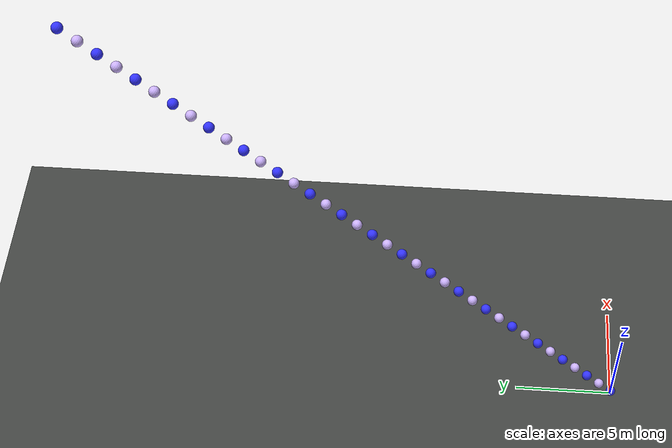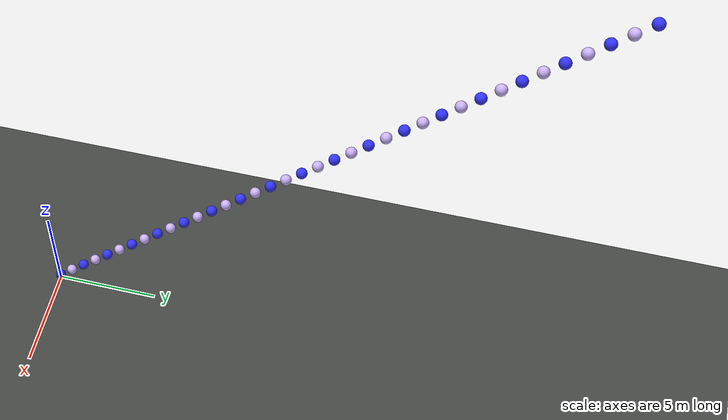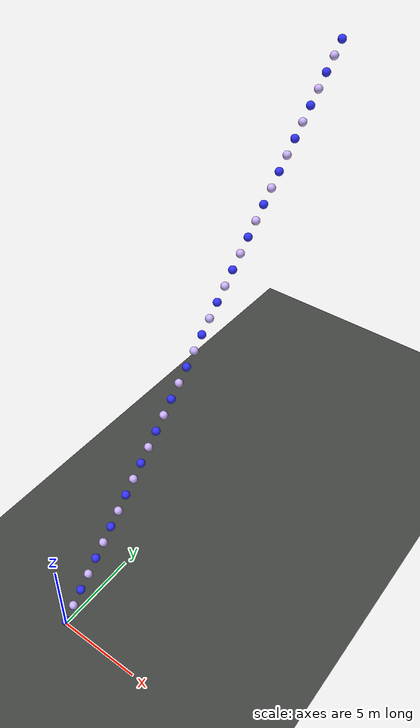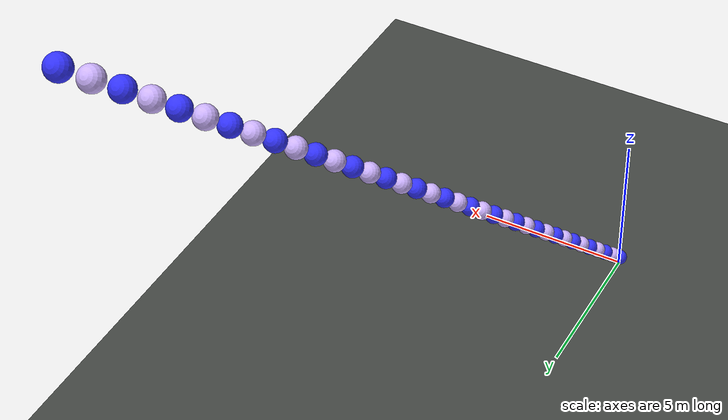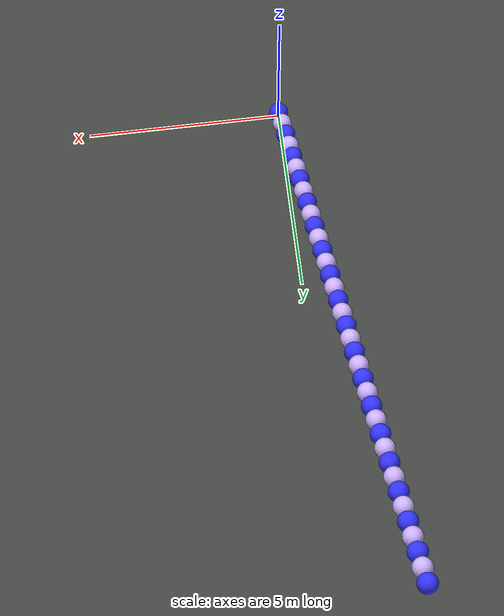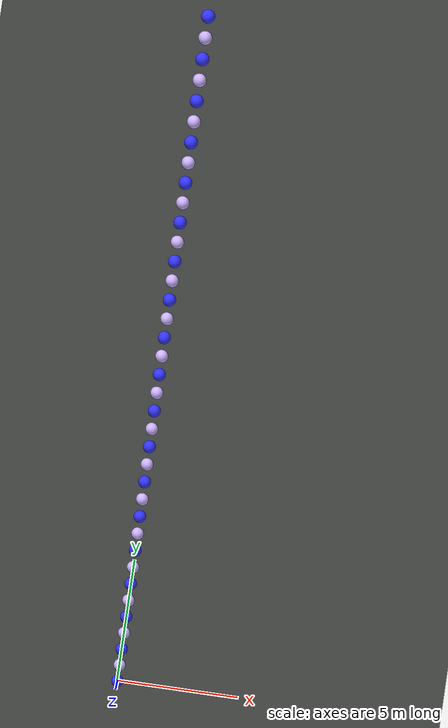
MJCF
<mujoco model="n_snake">
	<worldbody>
		<light diffuse=".5 .5 .5" dir="0 0 -1" pos="0 0 3" />
        <geom name="ground" pos="0 0 0" rgba="0.25 0.26 0.25 1" size="100 100 2" type="plane" contype="1"/>

            <body name="link1" pos="0 0 0.25" euler="135 0 0">
                <joint type="free" name="joint1"/>
                <geom type="sphere" mass="1" size="0.25" rgba=".2 .2 1 1"/>
                <body name="link2" pos="0 0 -1" euler="0 0 0">
                    <joint type="ball" pos="0 0 0" name="joint2"/>
                    <geom type="sphere" mass="1" size="0.25" rgba=".8 .7 9 1"/>
                    <body name="link3" pos="0 0 -1" euler="0 0 0">
                        <joint type="ball" pos="0 0 0" name="joint3"/>
                        <geom type="sphere" mass="1" size="0.25" rgba=".2 .2 1 1"/>
                        <body name="link4" pos="0 0 -1" euler="0 0 0">
                            <joint type="ball" pos="0 0 0" name="joint4"/>
                            <geom type="sphere" mass="1" size="0.25" rgba=".8 .7 9 1"/>
                            <body name="link5" pos="0 0 -1" euler="0 0 0">
                                <joint type="ball" pos="0 0 0" name="joint5"/>
                                <geom type="sphere" mass="1" size="0.25" rgba=".2 .2 1 1"/>
                                <body name="link6" pos="0 0 -1" euler="0 0 0">
                                    <joint type="ball" pos="0 0 0" name="joint6"/>
                                    <geom type="sphere" mass="1" size="0.25" rgba=".8 .7 9 1"/>
                                    <body name="link7" pos="0 0 -1" euler="0 0 0">
                                        <joint type="ball" pos="0 0 0" name="joint7"/>
                                        <geom type="sphere" mass="1" size="0.25" rgba=".2 .2 1 1"/>
                                        <body name="link8" pos="0 0 -1" euler="0 0 0">
                                            <joint type="ball" pos="0 0 0" name="joint8"/>
                                            <geom type="sphere" mass="1" size="0.25" rgba=".8 .7 9 1"/>
                                            <body name="link9" pos="0 0 -1" euler="0 0 0">
                                                <joint type="ball" pos="0 0 0" name="joint9"/>
                                                <geom type="sphere" mass="1" size="0.25" rgba=".2 .2 1 1"/>
                                                <body name="link10" pos="0 0 -1" euler="0 0 0">
                                                    <joint type="ball" pos="0 0 0" name="joint10"/>
                                                    <geom type="sphere" mass="1" size="0.25" rgba=".8 .7 9 1"/>
            <body name="link11" pos="0 0 -1" euler="0 0 0">
                <joint type="ball" pos="0 0 0" name="joint11"/>
                <geom type="sphere" mass="1" size="0.25" rgba=".2 .2 1 1"/>
                <body name="link12" pos="0 0 -1" euler="0 0 0">
                    <joint type="ball" pos="0 0 0" name="joint12"/>
                    <geom type="sphere" mass="1" size="0.25" rgba=".8 .7 9 1"/>
                    <body name="link13" pos="0 0 -1" euler="0 0 0">
                        <joint type="ball" pos="0 0 0" name="joint13"/>
                        <geom type="sphere" mass="1" size="0.25" rgba=".2 .2 1 1"/>
                        <body name="link14" pos="0 0 -1" euler="0 0 0">
                            <joint type="ball" pos="0 0 0" name="joint14"/>
                            <geom type="sphere" mass="1" size="0.25" rgba=".8 .7 9 1"/>
                            <body name="link15" pos="0 0 -1" euler="0 0 0">
                                <joint type="ball" pos="0 0 0" name="joint15"/>
                                <geom type="sphere" mass="1" size="0.25" rgba=".2 .2 1 1"/>
                                <body name="link16" pos="0 0 -1" euler="0 0 0">
                                    <joint type="ball" pos="0 0 0" name="joint16"/>
                                    <geom type="sphere" mass="1" size="0.25" rgba=".8 .7 9 1"/>
                                    <body name="link17" pos="0 0 -1" euler="0 0 0">
                                        <joint type="ball" pos="0 0 0" name="joint17"/>
                                        <geom type="sphere" mass="1" size="0.25" rgba=".2 .2 1 1"/>
                                        <body name="link18" pos="0 0 -1" euler="0 0 0">
                                            <joint type="ball" pos="0 0 0" name="joint18"/>
                                            <geom type="sphere" mass="1" size="0.25" rgba=".8 .7 9 1"/>
                                            <body name="link19" pos="0 0 -1" euler="0 0 0">
                                                <joint type="ball" pos="0 0 0" name="joint19"/>
                                                <geom type="sphere" mass="1" size="0.25" rgba=".2 .2 1 1"/>
                                                <body name="link20" pos="0 0 -1" euler="0 0 0">
                                                    <joint type="ball" pos="0 0 0" name="joint20"/>
                                                    <geom type="sphere" mass="1" size="0.25" rgba=".8 .7 9 1"/>
            <body name="link21" pos="0 0 -1" euler="0 0 0">
                <joint type="ball" pos="0 0 0" name="joint21"/>
                <geom type="sphere" mass="1" size="0.25" rgba=".2 .2 1 1"/>
                <body name="link22" pos="0 0 -1" euler="0 0 0">
                    <joint type="ball" pos="0 0 0" name="joint22"/>
                    <geom type="sphere" mass="1" size="0.25" rgba=".8 .7 9 1"/>
                    <body name="link23" pos="0 0 -1" euler="0 0 0">
                        <joint type="ball" pos="0 0 0" name="joint23"/>
                        <geom type="sphere" mass="1" size="0.25" rgba=".2 .2 1 1"/>
                        <body name="link24" pos="0 0 -1" euler="0 0 0">
                            <joint type="ball" pos="0 0 0" name="joint24"/>
                            <geom type="sphere" mass="1" size="0.25" rgba=".8 .7 9 1"/>
                            <body name="link25" pos="0 0 -1" euler="0 0 0">
                                <joint type="ball" pos="0 0 0" name="joint25"/>
                                <geom type="sphere" mass="1" size="0.25" rgba=".2 .2 1 1"/>
                                <body name="link26" pos="0 0 -1" euler="0 0 0">
                                    <joint type="ball" pos="0 0 0" name="joint26"/>
                                    <geom type="sphere" mass="1" size="0.25" rgba=".8 .7 9 1"/>
                                    <body name="link27" pos="0 0 -1" euler="0 0 0">
                                        <joint type="ball" pos="0 0 0" name="joint27"/>
                                        <geom type="sphere" mass="1" size="0.25" rgba=".2 .2 1 1"/>
                                        <body name="link28" pos="0 0 -1" euler="0 0 0">
                                            <joint type="ball" pos="0 0 0" name="joint28"/>
                                            <geom type="sphere" mass="1" size="0.25" rgba=".8 .7 9 1"/>
                                            <body name="link29" pos="0 0 -1" euler="0 0 0">
                                                <joint type="ball" pos="0 0 0" name="joint29"/>
                                                <geom type="sphere" mass="1" size="0.25" rgba=".2 .2 1 1"/>
                                                <body name="link30" pos="0 0 -1" euler="0 0 0">
                                                    <joint type="ball" pos="0 0 0" name="joint30"/>
                                                    <geom type="sphere" mass="1" size="0.25" rgba=".8 .7 9 1"/>
            <body name="link31" pos="0 0 -1" euler="0 0 0">
                <joint type="ball" pos="0 0 0" name="joint31"/>
                <geom type="sphere" mass="1" size="0.25" rgba=".2 .2 1 1"/>
                <body name="link32" pos="0 0 -1" euler="0 0 0">
                    <joint type="ball" pos="0 0 0" name="joint32"/>
                    <geom type="sphere" mass="1" size="0.25" rgba=".8 .7 9 1"/>
                    <body name="link33" pos="0 0 -1" euler="0 0 0">
                        <joint type="ball" pos="0 0 0" name="joint33"/>
                        <geom type="sphere" mass="1" size="0.25" rgba=".2 .2 1 1"/>
                        <body name="link34" pos="0 0 -1" euler="0 0 0">
                            <joint type="ball" pos="0 0 0" name="joint34"/>
                            <geom type="sphere" mass="1" size="0.25" rgba=".8 .7 9 1"/>
                            <body name="link35" pos="0 0 -1" euler="0 0 0">
                                <joint type="ball" pos="0 0 0" name="joint35"/>
                                <geom type="sphere" mass="1" size="0.25" rgba=".2 .2 1 1"/>
                                <body name="link36" pos="0 0 -1" euler="0 0 0">
                                    <joint type="ball" pos="0 0 0" name="joint36"/>
                                    <geom type="sphere" mass="1" size="0.25" rgba=".8 .7 9 1"/>
                                    <body name="link37" pos="0 0 -1" euler="0 0 0">
                                        <joint type="ball" pos="0 0 0" name="joint37"/>
                                        <geom type="sphere" mass="1" size="0.25" rgba=".2 .2 1 1"/>
                                    </body>
                                </body>
                            </body>
                        </body>
                    </body>
                </body>
            </body>
                                                </body>
                                            </body>
                                        </body>
                                    </body>
                                </body>
                            </body>
                        </body>
                    </body>
                </body>
            </body>
                                                </body>
                                            </body>
                                        </body>
                                    </body>
                                </body>
                            </body>
                        </body>
                    </body>
                </body>
            </body>
                                                </body>
                                            </body>
                                        </body>
                                    </body>
                                </body>
                            </body>
                        </body>
                    </body>
                </body>
            </body>

	</worldbody>
    <contact>
		<exclude body1="link1" body2="link2"/>
		<exclude body1="link1" body2="link3"/>
		<exclude body1="link2" body2="link3"/>
		<exclude body1="link1" body2="link4"/>
		<exclude body1="link2" body2="link4"/>
		<exclude body1="link3" body2="link4"/>
		<exclude body1="link1" body2="link5"/>
		<exclude body1="link2" body2="link5"/>
		<exclude body1="link3" body2="link5"/>
		<exclude body1="link4" body2="link5"/>
		<exclude body1="link1" body2="link6"/>
		<exclude body1="link2" body2="link6"/>
		<exclude body1="link3" body2="link6"/>
		<exclude body1="link4" body2="link6"/>
		<exclude body1="link5" body2="link6"/>
		<exclude body1="link1" body2="link7"/>
		<exclude body1="link2" body2="link7"/>
		<exclude body1="link3" body2="link7"/>
		<exclude body1="link4" body2="link7"/>
		<exclude body1="link5" body2="link7"/>
		<exclude body1="link6" body2="link7"/>
		<exclude body1="link1" body2="link8"/>
		<exclude body1="link2" body2="link8"/>
		<exclude body1="link3" body2="link8"/>
		<exclude body1="link4" body2="link8"/>
		<exclude body1="link5" body2="link8"/>
		<exclude body1="link6" body2="link8"/>
		<exclude body1="link7" body2="link8"/>
		<exclude body1="link1" body2="link9"/>
		<exclude body1="link2" body2="link9"/>
		<exclude body1="link3" body2="link9"/>
		<exclude body1="link4" body2="link9"/>
		<exclude body1="link5" body2="link9"/>
		<exclude body1="link6" body2="link9"/>
		<exclude body1="link7" body2="link9"/>
		<exclude body1="link8" body2="link9"/>
		<exclude body1="link1" body2="link10"/>
		<exclude body1="link2" body2="link10"/>
		<exclude body1="link3" body2="link10"/>
		<exclude body1="link4" body2="link10"/>
		<exclude body1="link5" body2="link10"/>
		<exclude body1="link6" body2="link10"/>
		<exclude body1="link7" body2="link10"/>
		<exclude body1="link8" body2="link10"/>
		<exclude body1="link9" body2="link10"/>
		<exclude body1="link1" body2="link11"/>
		<exclude body1="link2" body2="link11"/>
		<exclude body1="link3" body2="link11"/>
		<exclude body1="link4" body2="link11"/>
		<exclude body1="link5" body2="link11"/>
		<exclude body1="link6" body2="link11"/>
		<exclude body1="link7" body2="link11"/>
		<exclude body1="link8" body2="link11"/>
		<exclude body1="link9" body2="link11"/>
		<exclude body1="link10" body2="link11"/>
		<exclude body1="link1" body2="link12"/>
		<exclude body1="link2" body2="link12"/>
		<exclude body1="link3" body2="link12"/>
		<exclude body1="link4" body2="link12"/>
		<exclude body1="link5" body2="link12"/>
		<exclude body1="link6" body2="link12"/>
		<exclude body1="link7" body2="link12"/>
		<exclude body1="link8" body2="link12"/>
		<exclude body1="link9" body2="link12"/>
		<exclude body1="link10" body2="link12"/>
		<exclude body1="link11" body2="link12"/>
		<exclude body1="link1" body2="link13"/>
		<exclude body1="link2" body2="link13"/>
		<exclude body1="link3" body2="link13"/>
		<exclude body1="link4" body2="link13"/>
		<exclude body1="link5" body2="link13"/>
		<exclude body1="link6" body2="link13"/>
		<exclude body1="link7" body2="link13"/>
		<exclude body1="link8" body2="link13"/>
		<exclude body1="link9" body2="link13"/>
		<exclude body1="link10" body2="link13"/>
		<exclude body1="link11" body2="link13"/>
		<exclude body1="link12" body2="link13"/>
		<exclude body1="link1" body2="link14"/>
		<exclude body1="link2" body2="link14"/>
		<exclude body1="link3" body2="link14"/>
		<exclude body1="link4" body2="link14"/>
		<exclude body1="link5" body2="link14"/>
		<exclude body1="link6" body2="link14"/>
		<exclude body1="link7" body2="link14"/>
		<exclude body1="link8" body2="link14"/>
		<exclude body1="link9" body2="link14"/>
		<exclude body1="link10" body2="link14"/>
		<exclude body1="link11" body2="link14"/>
		<exclude body1="link12" body2="link14"/>
		<exclude body1="link13" body2="link14"/>
		<exclude body1="link1" body2="link15"/>
		<exclude body1="link2" body2="link15"/>
		<exclude body1="link3" body2="link15"/>
		<exclude body1="link4" body2="link15"/>
		<exclude body1="link5" body2="link15"/>
		<exclude body1="link6" body2="link15"/>
		<exclude body1="link7" body2="link15"/>
		<exclude body1="link8" body2="link15"/>
		<exclude body1="link9" body2="link15"/>
		<exclude body1="link10" body2="link15"/>
		<exclude body1="link11" body2="link15"/>
		<exclude body1="link12" body2="link15"/>
		<exclude body1="link13" body2="link15"/>
		<exclude body1="link14" body2="link15"/>
		<exclude body1="link1" body2="link16"/>
		<exclude body1="link2" body2="link16"/>
		<exclude body1="link3" body2="link16"/>
		<exclude body1="link4" body2="link16"/>
		<exclude body1="link5" body2="link16"/>
		<exclude body1="link6" body2="link16"/>
		<exclude body1="link7" body2="link16"/>
		<exclude body1="link8" body2="link16"/>
		<exclude body1="link9" body2="link16"/>
		<exclude body1="link10" body2="link16"/>
		<exclude body1="link11" body2="link16"/>
		<exclude body1="link12" body2="link16"/>
		<exclude body1="link13" body2="link16"/>
		<exclude body1="link14" body2="link16"/>
		<exclude body1="link15" body2="link16"/>
		<exclude body1="link1" body2="link17"/>
		<exclude body1="link2" body2="link17"/>
		<exclude body1="link3" body2="link17"/>
		<exclude body1="link4" body2="link17"/>
		<exclude body1="link5" body2="link17"/>
		<exclude body1="link6" body2="link17"/>
		<exclude body1="link7" body2="link17"/>
		<exclude body1="link8" body2="link17"/>
		<exclude body1="link9" body2="link17"/>
		<exclude body1="link10" body2="link17"/>
		<exclude body1="link11" body2="link17"/>
		<exclude body1="link12" body2="link17"/>
		<exclude body1="link13" body2="link17"/>
		<exclude body1="link14" body2="link17"/>
		<exclude body1="link15" body2="link17"/>
		<exclude body1="link16" body2="link17"/>
		<exclude body1="link1" body2="link18"/>
		<exclude body1="link2" body2="link18"/>
		<exclude body1="link3" body2="link18"/>
		<exclude body1="link4" body2="link18"/>
		<exclude body1="link5" body2="link18"/>
		<exclude body1="link6" body2="link18"/>
		<exclude body1="link7" body2="link18"/>
		<exclude body1="link8" body2="link18"/>
		<exclude body1="link9" body2="link18"/>
		<exclude body1="link10" body2="link18"/>
		<exclude body1="link11" body2="link18"/>
		<exclude body1="link12" body2="link18"/>
		<exclude body1="link13" body2="link18"/>
		<exclude body1="link14" body2="link18"/>
		<exclude body1="link15" body2="link18"/>
		<exclude body1="link16" body2="link18"/>
		<exclude body1="link17" body2="link18"/>
		<exclude body1="link1" body2="link19"/>
		<exclude body1="link2" body2="link19"/>
		<exclude body1="link3" body2="link19"/>
		<exclude body1="link4" body2="link19"/>
		<exclude body1="link5" body2="link19"/>
		<exclude body1="link6" body2="link19"/>
		<exclude body1="link7" body2="link19"/>
		<exclude body1="link8" body2="link19"/>
		<exclude body1="link9" body2="link19"/>
		<exclude body1="link10" body2="link19"/>
		<exclude body1="link11" body2="link19"/>
		<exclude body1="link12" body2="link19"/>
		<exclude body1="link13" body2="link19"/>
		<exclude body1="link14" body2="link19"/>
		<exclude body1="link15" body2="link19"/>
		<exclude body1="link16" body2="link19"/>
		<exclude body1="link17" body2="link19"/>
		<exclude body1="link18" body2="link19"/>
		<exclude body1="link1" body2="link20"/>
		<exclude body1="link2" body2="link20"/>
		<exclude body1="link3" body2="link20"/>
		<exclude body1="link4" body2="link20"/>
		<exclude body1="link5" body2="link20"/>
		<exclude body1="link6" body2="link20"/>
		<exclude body1="link7" body2="link20"/>
		<exclude body1="link8" body2="link20"/>
		<exclude body1="link9" body2="link20"/>
		<exclude body1="link10" body2="link20"/>
		<exclude body1="link11" body2="link20"/>
		<exclude body1="link12" body2="link20"/>
		<exclude body1="link13" body2="link20"/>
		<exclude body1="link14" body2="link20"/>
		<exclude body1="link15" body2="link20"/>
		<exclude body1="link16" body2="link20"/>
		<exclude body1="link17" body2="link20"/>
		<exclude body1="link18" body2="link20"/>
		<exclude body1="link19" body2="link20"/>
		<exclude body1="link1" body2="link21"/>
		<exclude body1="link2" body2="link21"/>
		<exclude body1="link3" body2="link21"/>
		<exclude body1="link4" body2="link21"/>
		<exclude body1="link5" body2="link21"/>
		<exclude body1="link6" body2="link21"/>
		<exclude body1="link7" body2="link21"/>
		<exclude body1="link8" body2="link21"/>
		<exclude body1="link9" body2="link21"/>
		<exclude body1="link10" body2="link21"/>
		<exclude body1="link11" body2="link21"/>
		<exclude body1="link12" body2="link21"/>
		<exclude body1="link13" body2="link21"/>
		<exclude body1="link14" body2="link21"/>
		<exclude body1="link15" body2="link21"/>
		<exclude body1="link16" body2="link21"/>
		<exclude body1="link17" body2="link21"/>
		<exclude body1="link18" body2="link21"/>
		<exclude body1="link19" body2="link21"/>
		<exclude body1="link20" body2="link21"/>
		<exclude body1="link1" body2="link22"/>
		<exclude body1="link2" body2="link22"/>
		<exclude body1="link3" body2="link22"/>
		<exclude body1="link4" body2="link22"/>
		<exclude body1="link5" body2="link22"/>
		<exclude body1="link6" body2="link22"/>
		<exclude body1="link7" body2="link22"/>
		<exclude body1="link8" body2="link22"/>
		<exclude body1="link9" body2="link22"/>
		<exclude body1="link10" body2="link22"/>
		<exclude body1="link11" body2="link22"/>
		<exclude body1="link12" body2="link22"/>
		<exclude body1="link13" body2="link22"/>
		<exclude body1="link14" body2="link22"/>
		<exclude body1="link15" body2="link22"/>
		<exclude body1="link16" body2="link22"/>
		<exclude body1="link17" body2="link22"/>
		<exclude body1="link18" body2="link22"/>
		<exclude body1="link19" body2="link22"/>
		<exclude body1="link20" body2="link22"/>
		<exclude body1="link21" body2="link22"/>
		<exclude body1="link1" body2="link23"/>
		<exclude body1="link2" body2="link23"/>
		<exclude body1="link3" body2="link23"/>
		<exclude body1="link4" body2="link23"/>
		<exclude body1="link5" body2="link23"/>
		<exclude body1="link6" body2="link23"/>
		<exclude body1="link7" body2="link23"/>
		<exclude body1="link8" body2="link23"/>
		<exclude body1="link9" body2="link23"/>
		<exclude body1="link10" body2="link23"/>
		<exclude body1="link11" body2="link23"/>
		<exclude body1="link12" body2="link23"/>
		<exclude body1="link13" body2="link23"/>
		<exclude body1="link14" body2="link23"/>
		<exclude body1="link15" body2="link23"/>
		<exclude body1="link16" body2="link23"/>
		<exclude body1="link17" body2="link23"/>
		<exclude body1="link18" body2="link23"/>
		<exclude body1="link19" body2="link23"/>
		<exclude body1="link20" body2="link23"/>
		<exclude body1="link21" body2="link23"/>
		<exclude body1="link22" body2="link23"/>
		<exclude body1="link1" body2="link24"/>
		<exclude body1="link2" body2="link24"/>
		<exclude body1="link3" body2="link24"/>
		<exclude body1="link4" body2="link24"/>
		<exclude body1="link5" body2="link24"/>
		<exclude body1="link6" body2="link24"/>
		<exclude body1="link7" body2="link24"/>
		<exclude body1="link8" body2="link24"/>
		<exclude body1="link9" body2="link24"/>
		<exclude body1="link10" body2="link24"/>
		<exclude body1="link11" body2="link24"/>
		<exclude body1="link12" body2="link24"/>
		<exclude body1="link13" body2="link24"/>
		<exclude body1="link14" body2="link24"/>
		<exclude body1="link15" body2="link24"/>
		<exclude body1="link16" body2="link24"/>
		<exclude body1="link17" body2="link24"/>
		<exclude body1="link18" body2="link24"/>
		<exclude body1="link19" body2="link24"/>
		<exclude body1="link20" body2="link24"/>
		<exclude body1="link21" body2="link24"/>
		<exclude body1="link22" body2="link24"/>
		<exclude body1="link23" body2="link24"/>
		<exclude body1="link1" body2="link25"/>
		<exclude body1="link2" body2="link25"/>
		<exclude body1="link3" body2="link25"/>
		<exclude body1="link4" body2="link25"/>
		<exclude body1="link5" body2="link25"/>
		<exclude body1="link6" body2="link25"/>
		<exclude body1="link7" body2="link25"/>
		<exclude body1="link8" body2="link25"/>
		<exclude body1="link9" body2="link25"/>
		<exclude body1="link10" body2="link25"/>
		<exclude body1="link11" body2="link25"/>
		<exclude body1="link12" body2="link25"/>
		<exclude body1="link13" body2="link25"/>
		<exclude body1="link14" body2="link25"/>
		<exclude body1="link15" body2="link25"/>
		<exclude body1="link16" body2="link25"/>
		<exclude body1="link17" body2="link25"/>
		<exclude body1="link18" body2="link25"/>
		<exclude body1="link19" body2="link25"/>
		<exclude body1="link20" body2="link25"/>
		<exclude body1="link21" body2="link25"/>
		<exclude body1="link22" body2="link25"/>
		<exclude body1="link23" body2="link25"/>
		<exclude body1="link24" body2="link25"/>
		<exclude body1="link1" body2="link26"/>
		<exclude body1="link2" body2="link26"/>
		<exclude body1="link3" body2="link26"/>
		<exclude body1="link4" body2="link26"/>
		<exclude body1="link5" body2="link26"/>
		<exclude body1="link6" body2="link26"/>
		<exclude body1="link7" body2="link26"/>
		<exclude body1="link8" body2="link26"/>
		<exclude body1="link9" body2="link26"/>
		<exclude body1="link10" body2="link26"/>
		<exclude body1="link11" body2="link26"/>
		<exclude body1="link12" body2="link26"/>
		<exclude body1="link13" body2="link26"/>
		<exclude body1="link14" body2="link26"/>
		<exclude body1="link15" body2="link26"/>
		<exclude body1="link16" body2="link26"/>
		<exclude body1="link17" body2="link26"/>
		<exclude body1="link18" body2="link26"/>
		<exclude body1="link19" body2="link26"/>
		<exclude body1="link20" body2="link26"/>
		<exclude body1="link21" body2="link26"/>
		<exclude body1="link22" body2="link26"/>
		<exclude body1="link23" body2="link26"/>
		<exclude body1="link24" body2="link26"/>
		<exclude body1="link25" body2="link26"/>
		<exclude body1="link1" body2="link27"/>
		<exclude body1="link2" body2="link27"/>
		<exclude body1="link3" body2="link27"/>
		<exclude body1="link4" body2="link27"/>
		<exclude body1="link5" body2="link27"/>
		<exclude body1="link6" body2="link27"/>
		<exclude body1="link7" body2="link27"/>
		<exclude body1="link8" body2="link27"/>
		<exclude body1="link9" body2="link27"/>
		<exclude body1="link10" body2="link27"/>
		<exclude body1="link11" body2="link27"/>
		<exclude body1="link12" body2="link27"/>
		<exclude body1="link13" body2="link27"/>
		<exclude body1="link14" body2="link27"/>
		<exclude body1="link15" body2="link27"/>
		<exclude body1="link16" body2="link27"/>
		<exclude body1="link17" body2="link27"/>
		<exclude body1="link18" body2="link27"/>
		<exclude body1="link19" body2="link27"/>
		<exclude body1="link20" body2="link27"/>
		<exclude body1="link21" body2="link27"/>
		<exclude body1="link22" body2="link27"/>
		<exclude body1="link23" body2="link27"/>
		<exclude body1="link24" body2="link27"/>
		<exclude body1="link25" body2="link27"/>
		<exclude body1="link26" body2="link27"/>
		<exclude body1="link1" body2="link28"/>
		<exclude body1="link2" body2="link28"/>
		<exclude body1="link3" body2="link28"/>
		<exclude body1="link4" body2="link28"/>
		<exclude body1="link5" body2="link28"/>
		<exclude body1="link6" body2="link28"/>
		<exclude body1="link7" body2="link28"/>
		<exclude body1="link8" body2="link28"/>
		<exclude body1="link9" body2="link28"/>
		<exclude body1="link10" body2="link28"/>
		<exclude body1="link11" body2="link28"/>
		<exclude body1="link12" body2="link28"/>
		<exclude body1="link13" body2="link28"/>
		<exclude body1="link14" body2="link28"/>
		<exclude body1="link15" body2="link28"/>
		<exclude body1="link16" body2="link28"/>
		<exclude body1="link17" body2="link28"/>
		<exclude body1="link18" body2="link28"/>
		<exclude body1="link19" body2="link28"/>
		<exclude body1="link20" body2="link28"/>
		<exclude body1="link21" body2="link28"/>
		<exclude body1="link22" body2="link28"/>
		<exclude body1="link23" body2="link28"/>
		<exclude body1="link24" body2="link28"/>
		<exclude body1="link25" body2="link28"/>
		<exclude body1="link26" body2="link28"/>
		<exclude body1="link27" body2="link28"/>
		<exclude body1="link1" body2="link29"/>
		<exclude body1="link2" body2="link29"/>
		<exclude body1="link3" body2="link29"/>
		<exclude body1="link4" body2="link29"/>
		<exclude body1="link5" body2="link29"/>
		<exclude body1="link6" body2="link29"/>
		<exclude body1="link7" body2="link29"/>
		<exclude body1="link8" body2="link29"/>
		<exclude body1="link9" body2="link29"/>
		<exclude body1="link10" body2="link29"/>
		<exclude body1="link11" body2="link29"/>
		<exclude body1="link12" body2="link29"/>
		<exclude body1="link13" body2="link29"/>
		<exclude body1="link14" body2="link29"/>
		<exclude body1="link15" body2="link29"/>
		<exclude body1="link16" body2="link29"/>
		<exclude body1="link17" body2="link29"/>
		<exclude body1="link18" body2="link29"/>
		<exclude body1="link19" body2="link29"/>
		<exclude body1="link20" body2="link29"/>
		<exclude body1="link21" body2="link29"/>
		<exclude body1="link22" body2="link29"/>
		<exclude body1="link23" body2="link29"/>
		<exclude body1="link24" body2="link29"/>
		<exclude body1="link25" body2="link29"/>
		<exclude body1="link26" body2="link29"/>
		<exclude body1="link27" body2="link29"/>
		<exclude body1="link28" body2="link29"/>
		<exclude body1="link1" body2="link30"/>
		<exclude body1="link2" body2="link30"/>
		<exclude body1="link3" body2="link30"/>
		<exclude body1="link4" body2="link30"/>
		<exclude body1="link5" body2="link30"/>
		<exclude body1="link6" body2="link30"/>
		<exclude body1="link7" body2="link30"/>
		<exclude body1="link8" body2="link30"/>
		<exclude body1="link9" body2="link30"/>
		<exclude body1="link10" body2="link30"/>
		<exclude body1="link11" body2="link30"/>
		<exclude body1="link12" body2="link30"/>
		<exclude body1="link13" body2="link30"/>
		<exclude body1="link14" body2="link30"/>
		<exclude body1="link15" body2="link30"/>
		<exclude body1="link16" body2="link30"/>
		<exclude body1="link17" body2="link30"/>
		<exclude body1="link18" body2="link30"/>
		<exclude body1="link19" body2="link30"/>
		<exclude body1="link20" body2="link30"/>
		<exclude body1="link21" body2="link30"/>
		<exclude body1="link22" body2="link30"/>
		<exclude body1="link23" body2="link30"/>
		<exclude body1="link24" body2="link30"/>
		<exclude body1="link25" body2="link30"/>
		<exclude body1="link26" body2="link30"/>
		<exclude body1="link27" body2="link30"/>
		<exclude body1="link28" body2="link30"/>
		<exclude body1="link29" body2="link30"/>
		<exclude body1="link1" body2="link31"/>
		<exclude body1="link2" body2="link31"/>
		<exclude body1="link3" body2="link31"/>
		<exclude body1="link4" body2="link31"/>
		<exclude body1="link5" body2="link31"/>
		<exclude body1="link6" body2="link31"/>
		<exclude body1="link7" body2="link31"/>
		<exclude body1="link8" body2="link31"/>
		<exclude body1="link9" body2="link31"/>
		<exclude body1="link10" body2="link31"/>
		<exclude body1="link11" body2="link31"/>
		<exclude body1="link12" body2="link31"/>
		<exclude body1="link13" body2="link31"/>
		<exclude body1="link14" body2="link31"/>
		<exclude body1="link15" body2="link31"/>
		<exclude body1="link16" body2="link31"/>
		<exclude body1="link17" body2="link31"/>
		<exclude body1="link18" body2="link31"/>
		<exclude body1="link19" body2="link31"/>
		<exclude body1="link20" body2="link31"/>
		<exclude body1="link21" body2="link31"/>
		<exclude body1="link22" body2="link31"/>
		<exclude body1="link23" body2="link31"/>
		<exclude body1="link24" body2="link31"/>
		<exclude body1="link25" body2="link31"/>
		<exclude body1="link26" body2="link31"/>
		<exclude body1="link27" body2="link31"/>
		<exclude body1="link28" body2="link31"/>
		<exclude body1="link29" body2="link31"/>
		<exclude body1="link30" body2="link31"/>
		<exclude body1="link1" body2="link32"/>
		<exclude body1="link2" body2="link32"/>
		<exclude body1="link3" body2="link32"/>
		<exclude body1="link4" body2="link32"/>
		<exclude body1="link5" body2="link32"/>
		<exclude body1="link6" body2="link32"/>
		<exclude body1="link7" body2="link32"/>
		<exclude body1="link8" body2="link32"/>
		<exclude body1="link9" body2="link32"/>
		<exclude body1="link10" body2="link32"/>
		<exclude body1="link11" body2="link32"/>
		<exclude body1="link12" body2="link32"/>
		<exclude body1="link13" body2="link32"/>
		<exclude body1="link14" body2="link32"/>
		<exclude body1="link15" body2="link32"/>
		<exclude body1="link16" body2="link32"/>
		<exclude body1="link17" body2="link32"/>
		<exclude body1="link18" body2="link32"/>
		<exclude body1="link19" body2="link32"/>
		<exclude body1="link20" body2="link32"/>
		<exclude body1="link21" body2="link32"/>
		<exclude body1="link22" body2="link32"/>
		<exclude body1="link23" body2="link32"/>
		<exclude body1="link24" body2="link32"/>
		<exclude body1="link25" body2="link32"/>
		<exclude body1="link26" body2="link32"/>
		<exclude body1="link27" body2="link32"/>
		<exclude body1="link28" body2="link32"/>
		<exclude body1="link29" body2="link32"/>
		<exclude body1="link30" body2="link32"/>
		<exclude body1="link31" body2="link32"/>
		<exclude body1="link1" body2="link33"/>
		<exclude body1="link2" body2="link33"/>
		<exclude body1="link3" body2="link33"/>
		<exclude body1="link4" body2="link33"/>
		<exclude body1="link5" body2="link33"/>
		<exclude body1="link6" body2="link33"/>
		<exclude body1="link7" body2="link33"/>
		<exclude body1="link8" body2="link33"/>
		<exclude body1="link9" body2="link33"/>
		<exclude body1="link10" body2="link33"/>
		<exclude body1="link11" body2="link33"/>
		<exclude body1="link12" body2="link33"/>
		<exclude body1="link13" body2="link33"/>
		<exclude body1="link14" body2="link33"/>
		<exclude body1="link15" body2="link33"/>
		<exclude body1="link16" body2="link33"/>
		<exclude body1="link17" body2="link33"/>
		<exclude body1="link18" body2="link33"/>
		<exclude body1="link19" body2="link33"/>
		<exclude body1="link20" body2="link33"/>
		<exclude body1="link21" body2="link33"/>
		<exclude body1="link22" body2="link33"/>
		<exclude body1="link23" body2="link33"/>
		<exclude body1="link24" body2="link33"/>
		<exclude body1="link25" body2="link33"/>
		<exclude body1="link26" body2="link33"/>
		<exclude body1="link27" body2="link33"/>
		<exclude body1="link28" body2="link33"/>
		<exclude body1="link29" body2="link33"/>
		<exclude body1="link30" body2="link33"/>
		<exclude body1="link31" body2="link33"/>
		<exclude body1="link32" body2="link33"/>
		<exclude body1="link1" body2="link34"/>
		<exclude body1="link2" body2="link34"/>
		<exclude body1="link3" body2="link34"/>
		<exclude body1="link4" body2="link34"/>
		<exclude body1="link5" body2="link34"/>
		<exclude body1="link6" body2="link34"/>
		<exclude body1="link7" body2="link34"/>
		<exclude body1="link8" body2="link34"/>
		<exclude body1="link9" body2="link34"/>
		<exclude body1="link10" body2="link34"/>
		<exclude body1="link11" body2="link34"/>
		<exclude body1="link12" body2="link34"/>
		<exclude body1="link13" body2="link34"/>
		<exclude body1="link14" body2="link34"/>
		<exclude body1="link15" body2="link34"/>
		<exclude body1="link16" body2="link34"/>
		<exclude body1="link17" body2="link34"/>
		<exclude body1="link18" body2="link34"/>
		<exclude body1="link19" body2="link34"/>
		<exclude body1="link20" body2="link34"/>
		<exclude body1="link21" body2="link34"/>
		<exclude body1="link22" body2="link34"/>
		<exclude body1="link23" body2="link34"/>
		<exclude body1="link24" body2="link34"/>
		<exclude body1="link25" body2="link34"/>
		<exclude body1="link26" body2="link34"/>
		<exclude body1="link27" body2="link34"/>
		<exclude body1="link28" body2="link34"/>
		<exclude body1="link29" body2="link34"/>
		<exclude body1="link30" body2="link34"/>
		<exclude body1="link31" body2="link34"/>
		<exclude body1="link32" body2="link34"/>
		<exclude body1="link33" body2="link34"/>
		<exclude body1="link1" body2="link35"/>
		<exclude body1="link2" body2="link35"/>
		<exclude body1="link3" body2="link35"/>
		<exclude body1="link4" body2="link35"/>
		<exclude body1="link5" body2="link35"/>
		<exclude body1="link6" body2="link35"/>
		<exclude body1="link7" body2="link35"/>
		<exclude body1="link8" body2="link35"/>
		<exclude body1="link9" body2="link35"/>
		<exclude body1="link10" body2="link35"/>
		<exclude body1="link11" body2="link35"/>
		<exclude body1="link12" body2="link35"/>
		<exclude body1="link13" body2="link35"/>
		<exclude body1="link14" body2="link35"/>
		<exclude body1="link15" body2="link35"/>
		<exclude body1="link16" body2="link35"/>
		<exclude body1="link17" body2="link35"/>
		<exclude body1="link18" body2="link35"/>
		<exclude body1="link19" body2="link35"/>
		<exclude body1="link20" body2="link35"/>
		<exclude body1="link21" body2="link35"/>
		<exclude body1="link22" body2="link35"/>
		<exclude body1="link23" body2="link35"/>
		<exclude body1="link24" body2="link35"/>
		<exclude body1="link25" body2="link35"/>
		<exclude body1="link26" body2="link35"/>
		<exclude body1="link27" body2="link35"/>
		<exclude body1="link28" body2="link35"/>
		<exclude body1="link29" body2="link35"/>
		<exclude body1="link30" body2="link35"/>
		<exclude body1="link31" body2="link35"/>
		<exclude body1="link32" body2="link35"/>
		<exclude body1="link33" body2="link35"/>
		<exclude body1="link34" body2="link35"/>
		<exclude body1="link1" body2="link36"/>
		<exclude body1="link2" body2="link36"/>
		<exclude body1="link3" body2="link36"/>
		<exclude body1="link4" body2="link36"/>
		<exclude body1="link5" body2="link36"/>
		<exclude body1="link6" body2="link36"/>
		<exclude body1="link7" body2="link36"/>
		<exclude body1="link8" body2="link36"/>
		<exclude body1="link9" body2="link36"/>
		<exclude body1="link10" body2="link36"/>
		<exclude body1="link11" body2="link36"/>
		<exclude body1="link12" body2="link36"/>
		<exclude body1="link13" body2="link36"/>
		<exclude body1="link14" body2="link36"/>
		<exclude body1="link15" body2="link36"/>
		<exclude body1="link16" body2="link36"/>
		<exclude body1="link17" body2="link36"/>
		<exclude body1="link18" body2="link36"/>
		<exclude body1="link19" body2="link36"/>
		<exclude body1="link20" body2="link36"/>
		<exclude body1="link21" body2="link36"/>
		<exclude body1="link22" body2="link36"/>
		<exclude body1="link23" body2="link36"/>
		<exclude body1="link24" body2="link36"/>
		<exclude body1="link25" body2="link36"/>
		<exclude body1="link26" body2="link36"/>
		<exclude body1="link27" body2="link36"/>
		<exclude body1="link28" body2="link36"/>
		<exclude body1="link29" body2="link36"/>
		<exclude body1="link30" body2="link36"/>
		<exclude body1="link31" body2="link36"/>
		<exclude body1="link32" body2="link36"/>
		<exclude body1="link33" body2="link36"/>
		<exclude body1="link34" body2="link36"/>
		<exclude body1="link35" body2="link36"/>
		<exclude body1="link1" body2="link37"/>
		<exclude body1="link2" body2="link37"/>
		<exclude body1="link3" body2="link37"/>
		<exclude body1="link4" body2="link37"/>
		<exclude body1="link5" body2="link37"/>
		<exclude body1="link6" body2="link37"/>
		<exclude body1="link7" body2="link37"/>
		<exclude body1="link8" body2="link37"/>
		<exclude body1="link9" body2="link37"/>
		<exclude body1="link10" body2="link37"/>
		<exclude body1="link11" body2="link37"/>
		<exclude body1="link12" body2="link37"/>
		<exclude body1="link13" body2="link37"/>
		<exclude body1="link14" body2="link37"/>
		<exclude body1="link15" body2="link37"/>
		<exclude body1="link16" body2="link37"/>
		<exclude body1="link17" body2="link37"/>
		<exclude body1="link18" body2="link37"/>
		<exclude body1="link19" body2="link37"/>
		<exclude body1="link20" body2="link37"/>
		<exclude body1="link21" body2="link37"/>
		<exclude body1="link22" body2="link37"/>
		<exclude body1="link23" body2="link37"/>
		<exclude body1="link24" body2="link37"/>
		<exclude body1="link25" body2="link37"/>
		<exclude body1="link26" body2="link37"/>
		<exclude body1="link27" body2="link37"/>
		<exclude body1="link28" body2="link37"/>
		<exclude body1="link29" body2="link37"/>
		<exclude body1="link30" body2="link37"/>
		<exclude body1="link31" body2="link37"/>
		<exclude body1="link32" body2="link37"/>
		<exclude body1="link33" body2="link37"/>
		<exclude body1="link34" body2="link37"/>
		<exclude body1="link35" body2="link37"/>
		<exclude body1="link36" body2="link37"/>
	</contact>
</mujoco>
